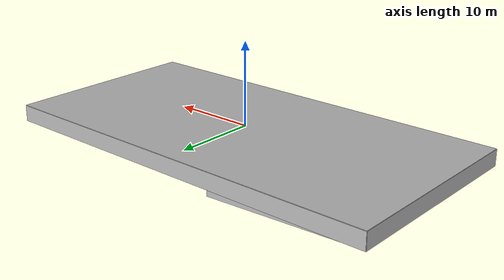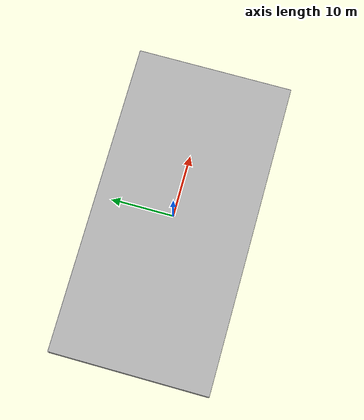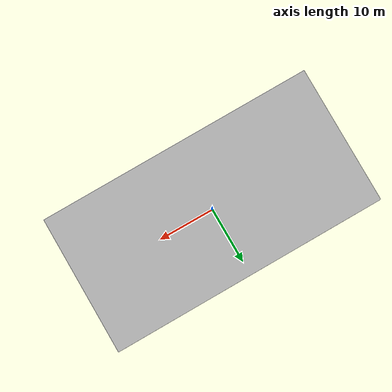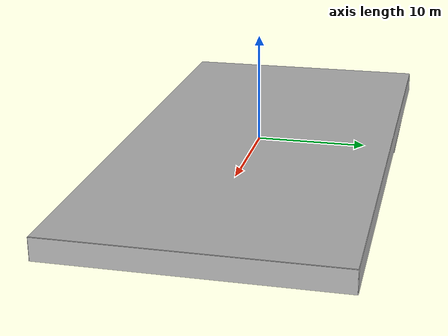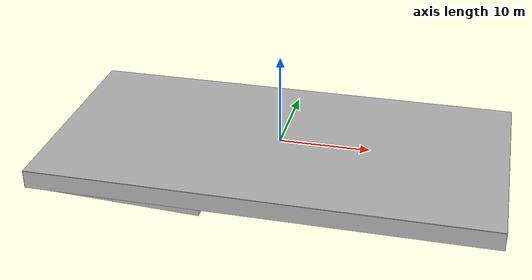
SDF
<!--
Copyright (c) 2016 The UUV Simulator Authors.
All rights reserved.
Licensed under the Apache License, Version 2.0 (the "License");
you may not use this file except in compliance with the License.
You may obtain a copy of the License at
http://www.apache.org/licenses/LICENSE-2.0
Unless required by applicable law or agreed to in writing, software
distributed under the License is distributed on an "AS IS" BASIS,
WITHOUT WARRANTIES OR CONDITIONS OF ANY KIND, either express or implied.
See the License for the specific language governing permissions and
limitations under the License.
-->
<?xml version="1.0" ?>
<sdf version="1.5">
  <world name="empty_underwater">
    <physics name="default_physics" default="true" type="ode">
      <max_step_size>0.002</max_step_size>
      <real_time_factor>1</real_time_factor>
      <real_time_update_rate>500</real_time_update_rate>
      <ode>
        <solver>
          <type>quick</type>
          <iters>50</iters>
          <sor>0.5</sor>
        </solver>
      </ode>
    </physics>
    <gravity>0 0 -9.781</gravity>
    <scene>
      <ambient>0.2 0.2 0.2 1.0</ambient>
      <sky>
        <time>12</time>
        <clouds>
          <speed>12</speed>
        </clouds>
      </sky>
      <shadows>1</shadows>
      <fog>
        <color>0.1 0.2 0.3 1.0</color>
        <type>linear</type>
        <density>0.003</density>
        <start>10</start>
        <end>25</end>
      </fog>
      <grid>0</grid>
    </scene>

    <!-- Origin placed somewhere in the middle of the North Sea  -->
    <spherical_coordinates>
      <latitude_deg>1.3521</latitude_deg>
      <longitude_deg>103.8198</longitude_deg>
    </spherical_coordinates>

    <!-- Global light source -->
    <include>
      <uri>model://sun</uri>
    </include>

    <!-- Bounding box with sea surface -->
    <include>
      <uri>model://swimming_pool</uri>
      <pose>0 0 0 0 0 0</pose>
    </include>

    <include>
      <uri>model://red_flare</uri>
      <pose>9 -4.5 -2 0 0 0</pose>
    </include>

    <include>
      <uri>model://gate</uri>
      <pose>6 -.6 -2 0 0 0</pose>
    </include>

    <include>
      <uri>model://yellow_flare</uri>
      <pose>12 4 -2 0 0 0</pose>
    </include>

    <include>
      <uri>model://yellow_flare</uri>
      <pose>13 7 -2 0 0 0</pose>
    </include>

    <include>
      <uri>model://target_acquistion_area</uri>
      <pose>6  9 -1.95 0 0 0</pose>
    </include>

    <plugin name="underwater_current_plugin" filename="libuuv_underwater_current_ros_plugin.so">
      <namespace>hydrodynamics</namespace>
      <constant_current>
        <topic>current_velocity</topic>
        <velocity>
          <mean>0</mean>
          <min>-0.2</min>
          <max>0.2</max>
          <mu>0.0</mu>
          <noiseAmp>0.05</noiseAmp>
        </velocity>

        <horizontal_angle>
          <mean>0</mean>
          <min>-3.141592653589793238</min>
          <max>3.141592653589793238</max>
          <mu>0.0</mu>
          <noiseAmp>3.14</noiseAmp>
        </horizontal_angle>

        <vertical_angle>
          <mean>0</mean>
          <min>-3.141592653589793238</min>
          <max>3.141592653589793238</max>
          <mu>0.0</mu>
          <noiseAmp>3.14</noiseAmp>
        </vertical_angle>
      </constant_current>
    </plugin>

    <plugin name="sc_interface" filename="libuuv_sc_ros_interface_plugin.so"/>

  </world>
</sdf>

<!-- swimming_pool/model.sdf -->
<sdf version="1.5">
  <model name="swimming_pool">
    <static>true</static>
    <link name="link">

      <visual name="ground1">
        <cast_shadows>false</cast_shadows>
        <pose>-24.1 -0 -1.64 0 0 0</pose>
        <geometry>
          <box>
            <size>1.8 25 .72</size>
          </box>
        </geometry>
        <material>
          <script>
            <uri>file://media/materials/scripts/ground_1.material</uri>
            <name>SAUVC2019/FloorTiles1</name>
          </script>
        </material>
      </visual>

      <collision name="ground1">
        <pose>-24.1 -0 -1.64 0 0 0</pose>
        <geometry>
          <box>
            <size>1.8 25 .72</size>
          </box>
        </geometry>
      </collision>

      <visual name="ground2">
        <cast_shadows>false</cast_shadows>
        <pose>-14.465 0 -1.9997  0 0.041119666044899805 0</pose>
        <geometry>
          <box>
            <size>17.514805165916062 25 .72</size>
          </box>
        </geometry>
        <material>
          <script>
            <uri>file://media/materials/scripts/ground_2.material</uri>
            <name>SAUVC2019/FloorTiles2</name>
          </script>
        </material>
      </visual>

      <collision name="ground2">
        <pose>-14.465 0 -1.9997  0 0.041119666044899805 0</pose>
        <geometry>
          <box>
            <size>17.514805165916062 25 .72</size>
          </box>
        </geometry>
      </collision>

      <visual name="ground3">
        <cast_shadows>false</cast_shadows>
        <pose>9.65 0 -2.01 0 0 0</pose>
        <geometry>
          <box>
            <size>30.7 25 0.005</size>
          </box>
        </geometry>
        <material>
          <script>
            <uri>file://media/materials/scripts/ground_3.material</uri>
            <name>SAUVC2019/FloorTiles3</name>
          </script>
        </material>
      </visual>

      <collision name="ground3">
        <pose>9.65 0 -2.01 0 0 0</pose>
        <geometry>
          <box>
            <size>30.7 25 0.005</size>
          </box>
        </geometry>
      </collision>

      <visual name="surface">
        <cast_shadows>false</cast_shadows>
        <pose>0 0 0 0 0 0</pose>
        <geometry>
          <box>
            <size>50 25 .1</size>
          </box>
        </geometry>
        <material>
          <script>
            <uri>file://media/materials/scripts/water.material</uri>
            <name>SAUVC2019/StaticWater</name>
          </script>
        </material>
      </visual>

      <visual name="north">
        <cast_shadows>false</cast_shadows>
        <pose>25 0 -1 0 0 0</pose>
        <geometry>
          <box>
            <size>.1 25 2</size>
          </box>
        </geometry>
        <material>
          <script>
            <uri>file://media/materials/scripts/short_wall_tiles.material</uri>
            <name>SAUVC2019/ShortWallTiles</name>
          </script>
        </material>
      </visual>

      <visual name="south">
        <cast_shadows>false</cast_shadows>
        <pose>-25 0 -1 0 0 0</pose>
        <geometry>
          <box>
            <size>.1 25 2</size>
          </box>
        </geometry>
        <material>
          <script>
            <uri>file://media/materials/scripts/short_wall_tiles.material</uri>
            <name>SAUVC2019/ShortWallTiles</name>
          </script>
        </material>
      </visual>

      <visual name="east">
        <cast_shadows>false</cast_shadows>
        <pose>0 -12.5 -1 0 0 0</pose>
        <geometry>
          <box>
            <size>50 .1 2</size>
          </box>
        </geometry>
        <material>
          <script>
            <uri>file://media/materials/scripts/long_wall_tiles.material</uri>
            <name>SAUVC2019/LongWallTiles</name>
          </script>
        </material>
      </visual>

      <visual name="west">
        <cast_shadows>false</cast_shadows>
        <pose>0 12.5 -1 0 0 0</pose>
        <geometry>
          <box>
            <size>50 .1 2</size>
          </box>
        </geometry>
        <material>
          <script>
            <uri>file://media/materials/scripts/long_wall_tiles.material</uri>
            <name>SAUVC2019/LongWallTiles</name>
          </script>
        </material>
      </visual>
    </link>
  </model>
</sdf>

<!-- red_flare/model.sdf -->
<sdf version="1.5">
  <model name="red_flare">
    <static>false</static>
    <link name="link">

      <collision name="flare">
        <pose>0 0 0.75 0 0 0</pose>
        <geometry>
          <cylinder>
            <radius>0.075</radius>
            <length>1.5</length>
          </cylinder>
        </geometry>
      </collision>

      <visual name="flare">
        <cast_shadows>false</cast_shadows>
        <pose>0 0 0.75 0 0 0</pose>
        <geometry>
          <cylinder>
            <radius>0.075</radius>
            <length>1.5</length>
          </cylinder>
        </geometry>
        <material>
          <script>
            <uri>file://materials/scripts/colors.material</uri>
            <name>SAUVC/Red</name>
          </script>
        </material>
      </visual>

    </link>
  </model>
</sdf>

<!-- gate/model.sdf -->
<sdf version="1.5">
  <model name="gate">
    <static>true</static>
    <link name="link">

      <collision name="left">
        <pose>-0.75 0 0.75 0 0 0</pose>
        <geometry>
          <cylinder>
            <radius>0.02</radius>
            <length>1.5</length>
          </cylinder>
        </geometry>
      </collision>

      <collision name="right">
        <pose>0.75 0 0.75 0 0 0</pose>
        <geometry>
          <cylinder>
            <radius>0.02</radius>
            <length>1.5</length>
          </cylinder>
        </geometry>
      </collision>

      <collision name="top">
        <pose>0 0 1.48 0 1.57 0</pose>
        <geometry>
          <cylinder>
            <radius>0.02</radius>
            <length>1.5</length>
          </cylinder>
        </geometry>
      </collision>

      <visual name="left">
        <cast_shadows>false</cast_shadows>
        <pose>-0.75 0 0.75 0 0 0</pose>
        <geometry>
          <cylinder>
            <radius>0.02</radius>
            <length>1.5</length>
          </cylinder>
        </geometry>
        <material>
          <script>
            <uri>file://materials/scripts/colors.material</uri>
            <name>SAUVC/Red</name>
          </script>
        </material>
      </visual>

      <visual name="right">
        <cast_shadows>false</cast_shadows>
        <pose>0.75 0 0.75 0 0 0</pose>
        <geometry>
          <cylinder>
            <radius>0.02</radius>
            <length>1.5</length>
          </cylinder>
        </geometry>
        <material>
          <script>
            <uri>file://materials/scripts/colors.material</uri>
            <name>SAUVC/Green</name>
          </script>
        </material>
      </visual>

      <visual name="top">
        <cast_shadows>false</cast_shadows>
        <pose>0 0 1.48 0 1.57 0</pose>
        <geometry>
          <cylinder>
            <radius>0.02</radius>
            <length>1.5</length>
          </cylinder>
        </geometry>
        <material>
          <script>
            <uri>file://materials/scripts/colors.material</uri>
            <name>SAUVC/Black</name>
          </script>
        </material>
      </visual>

      <visual name="bottom">
        <cast_shadows>false</cast_shadows>
        <pose>0 0 .05 0 0 0</pose>
        <geometry>
          <box>
            <size>1.8 .4 .02</size>
          </box>
        </geometry>
        <material>
          <script>
            <uri>file://materials/scripts/colors.material</uri>
            <name>SAUVC/Yellow</name>
          </script>
        </material>
      </visual>

    </link>
  </model>
</sdf>

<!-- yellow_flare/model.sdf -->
<sdf version='1.7'>
  <model name='yellow_flare'>
    <link name='link'>
      <inertial>
        <mass>1</mass>
        <inertia>
          <ixx>0.145833</ixx>
          <ixy>0</ixy>
          <ixz>0</ixz>
          <iyy>0.145833</iyy>
          <iyz>0</iyz>
          <izz>0.125</izz>
        </inertia>
        <pose>0 0 0 0 0 0</pose>
      </inertial>
      <self_collide>0</self_collide>
      <enable_wind>0</enable_wind>
      <kinematic>0</kinematic>
      <pose>0 0 0.4 0 0 0</pose>
      <gravity>1</gravity>
      <visual name='visual'>
        <geometry>
          <cylinder>
            <radius>0.03</radius>
            <length>0.8</length>
          </cylinder>
        </geometry>
        <material>
          <ambient>1 1 0 1</ambient>
          <diffuse>0.7 0.7 0.0 1</diffuse>
          <specular>0.01 0.01 0.00 1</specular>
          <emissive>0 0 0 1</emissive>
        </material>
        <pose>0 0 0 0 -0 0</pose>
        <transparency>0</transparency>
        <cast_shadows>1</cast_shadows>
      </visual>
      <collision name='collision1'>
        <laser_retro>0</laser_retro>
        <max_contacts>10</max_contacts>
        <pose>0 0 0 0 -0 0</pose>
        <geometry>
          <cylinder>
            <radius>0.03</radius>
            <length>0.8</length>
          </cylinder>
        </geometry>
        <surface>
          <friction>
            <ode>
              <mu>1</mu>
              <mu2>1</mu2>
              <fdir1>0 0 0</fdir1>
              <slip1>0</slip1>
              <slip2>0</slip2>
            </ode>
            <torsional>
              <coefficient>1</coefficient>
              <patch_radius>0</patch_radius>
              <surface_radius>0</surface_radius>
              <use_patch_radius>1</use_patch_radius>
              <ode>
                <slip>0</slip>
              </ode>
            </torsional>
          </friction>
          <bounce>
            <restitution_coefficient>0</restitution_coefficient>
            <threshold>1e+06</threshold>
          </bounce>
          <contact>
            <collide_without_contact>0</collide_without_contact>
            <collide_without_contact_bitmask>1</collide_without_contact_bitmask>
            <collide_bitmask>1</collide_bitmask>
            <ode>
              <soft_cfm>0</soft_cfm>
              <soft_erp>0.2</soft_erp>
              <kp>1e+13</kp>
              <kd>1</kd>
              <max_vel>0.01</max_vel>
              <min_depth>0</min_depth>
            </ode>
            <bullet>
              <split_impulse>1</split_impulse>
              <split_impulse_penetration_threshold>-0.01</split_impulse_penetration_threshold>
              <soft_cfm>0</soft_cfm>
              <soft_erp>0.2</soft_erp>
              <kp>1e+13</kp>
              <kd>1</kd>
            </bullet>
          </contact>
        </surface>
      </collision>
      <collision name='collision2'>
        <laser_retro>0</laser_retro>
        <max_contacts>10</max_contacts>
        <pose>0 0 -0.39 0 0 -0</pose>
        <geometry>
          <cylinder>
            <radius>0.08</radius>
            <length>0.02</length>
          </cylinder>
        </geometry>
        <surface>
          <friction>
            <ode>
              <mu>1</mu>
              <mu2>1</mu2>
              <fdir1>0 0 0</fdir1>
              <slip1>0</slip1>
              <slip2>0</slip2>
            </ode>
            <torsional>
              <coefficient>1</coefficient>
              <patch_radius>0</patch_radius>
              <surface_radius>0</surface_radius>
              <use_patch_radius>1</use_patch_radius>
              <ode>
                <slip>0</slip>
              </ode>
            </torsional>
          </friction>
          <bounce>
            <restitution_coefficient>0</restitution_coefficient>
            <threshold>1e+06</threshold>
          </bounce>
          <contact>
            <collide_without_contact>0</collide_without_contact>
            <collide_without_contact_bitmask>1</collide_without_contact_bitmask>
            <collide_bitmask>1</collide_bitmask>
            <ode>
              <soft_cfm>0</soft_cfm>
              <soft_erp>0.2</soft_erp>
              <kp>1e+13</kp>
              <kd>1</kd>
              <max_vel>0.01</max_vel>
              <min_depth>0</min_depth>
            </ode>
            <bullet>
              <split_impulse>1</split_impulse>
              <split_impulse_penetration_threshold>-0.01</split_impulse_penetration_threshold>
              <soft_cfm>0</soft_cfm>
              <soft_erp>0.2</soft_erp>
              <kp>1e+13</kp>
              <kd>1</kd>
            </bullet>
          </contact>
        </surface>
      </collision>
    </link>
    <static>0</static>
    <allow_auto_disable>1</allow_auto_disable>
  </model>
</sdf>

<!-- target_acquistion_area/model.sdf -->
<sdf version="1.5">
  <model name="target_acquistion_area">
    <static>true</static>
    <link name="link">

      <visual name="target_acquistion_area">
        <cast_shadows>false</cast_shadows>
        <pose>0 0 .005 0 0 0</pose>
        <geometry>
          <box>
            <size>8 2 .01</size>
          </box>
        </geometry>
        <material>
          <script>
            <uri>file://materials/scripts/colors.material</uri>
            <name>SAUVC/Green</name>
          </script>
        </material>
      </visual>
    </link>

    <include>
      <uri>model://red_drum</uri>
      <pose>-2.4 0 0 0 0 0</pose>
    </include>

    <include>
      <uri>model://blue_drum</uri>
      <pose>-0.8 0 0 0 0 0</pose>
    </include>

    <include>
      <uri>model://red_drum</uri>
      <pose>0.8 0 0 0 0 0</pose>
    </include>

    <include>
      <uri>model://red_drum</uri>
      <pose>2.4 0 0 0 0 0</pose>
    </include>

  </model>
</sdf>

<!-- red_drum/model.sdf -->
<sdf version="1.5">
  <model name="red_drum">
    <static>true</static>
    <link name="link">

      <collision name="drum">
        <pose>0 0 0.15 0 0 0</pose>
        <geometry>
          <mesh>
            <scale>0.001 0.001 0.001</scale>
            <uri>model://red_drum/bucket.stl</uri>
          </mesh>
        </geometry>
      </collision>

      <visual name="drum">
        <cast_shadows>false</cast_shadows>
        <pose>0 0 0.15 0 0 0</pose>
        <geometry>
          <mesh>
            <scale>0.001 0.001 0.001</scale>
            <uri>model://red_drum/bucket.stl</uri>
          </mesh>
          <scale>0.001 0.001 0.001</scale>
        </geometry>
        <material>
          <script>
            <uri>file://media/materials/scripts/colors.material</uri>
            <name>SAUVC/Red</name>
          </script>
        </material>
      </visual>

    </link>
  </model>
</sdf>

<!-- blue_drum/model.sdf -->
<sdf version="1.5">
  <model name="blue_drum">
    <static>true</static>
    <link name="link">

      <collision name="drum">
        <pose>0 0 0.15 0 0 0</pose>
        <geometry>
          <mesh>
            <scale>0.001 0.001 0.001</scale>
            <uri>model://red_drum/bucket.stl</uri>
          </mesh>

        </geometry>
      </collision>

      <visual name="drum">
        <cast_shadows>false</cast_shadows>
        <pose>0 0 0.15 0 0 0</pose>
        <geometry>
          <mesh>
            <scale>0.001 0.001 0.001</scale>
            <uri>model://red_drum/bucket.stl</uri>
          </mesh>
        </geometry>
        <material>
          <script>
            <uri>file://media/materials/scripts/colors.material</uri>
            <name>SAUVC/Blue</name>
          </script>
        </material>
      </visual>

    </link>
  </model>
</sdf>
